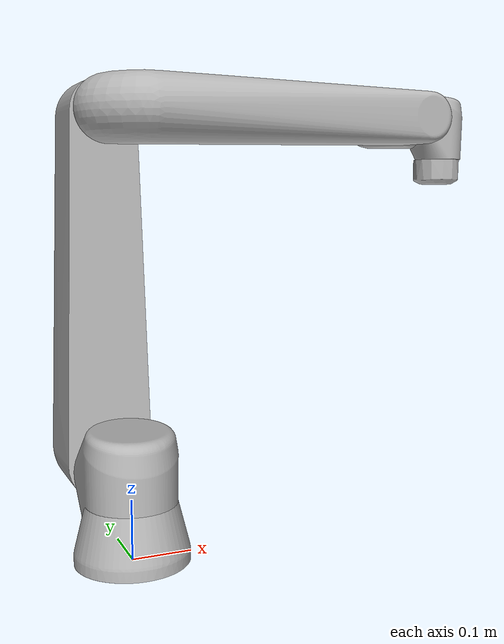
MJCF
<mujoco model="ur10">
  <compiler angle="radian" autolimits="true"/>

  <default>
    <default class="ur10">
      <joint axis="0 1 0" range="-6.28319 6.28319" armature="0.1"/>
      <position ctrlrange="-6.2831 6.2831"/>
      <general biastype="affine" ctrlrange="-6.2831 6.2831" gainprm="5000" biasprm="0 -5000 -500"/>
    </default>
  </default>

  <asset>
    <mesh name="base0" file="assets/base.stl"/>
    <mesh name="shoulder" file="assets/shoulder.stl"/>
    <mesh name="upperarm" file="assets/upperarm.stl"/>
    <mesh name="forearm" file="assets/forearm.stl"/>
    <mesh name="wrist1" file="assets/wrist1.stl"/>
    <mesh name="wrist2" file="assets/wrist2.stl"/>
    <mesh name="wrist3" file="assets/wrist3.stl"/>
  </asset>

  <worldbody>
    <body name="base0" childclass="ur10">
      <geom quat="-1 0 0 0" type="mesh" rgba="0.7 0.7 0.7 1" mesh="base0"/>
      <body name="shoulder_link" pos="0 0 0.1273" quat="0 0 0 1">
        <inertial pos="0.021 -0.027 0" quat="0.988634 -0.000680926 0.148578 -0.0229591" mass="7.1" diaginertia="0.0353866 0.0352903 0.0202532"/>
        <joint name="joint1" pos="0 0 0" axis="0 0 1" range="-6.28319 6.28319" damping="10"/>
        <geom quat="0 0 0 1" type="mesh" rgba="0.7 0.7 0.7 1" mesh="shoulder"/>
        <body name="upper_arm_link" quat="0.5 0.5 0.5 -0.5">
          <inertial pos="-0.232 0 0.158" quat="0.500033 0.499784 0.489585 0.510381" mass="12.7" diaginertia="0.77068 0.769758 0.0278114"/>
          <joint name="joint2" pos="0 0 0" axis="0 0 1" range="-6.28319 6.28319" damping="10"/>
          <geom pos="0 0 0.220941" quat="0.5 0.5 -0.5 -0.5" type="mesh" rgba="0.7 0.7 0.7 1" mesh="upperarm"/>
          <body name="forearm_link" pos="-0.612 0 0" quat="1 0 0 1">
            <inertial pos="-0.3323 0 0.068" quat="0.492051 0.507971 0.507346 0.492394" mass="4.27" diaginertia="0.30928 0.306743 0.00985709"/>
            <joint name="joint3" pos="0 0 0" axis="0 0 1" range="-3.14159 3.14159" damping="5"/>
            <geom pos="0 0 0.049042" quat="0.5 0.5 -0.5 -0.5" type="mesh" rgba="0.7 0.7 0.7 1" mesh="forearm"/>
            <body name="wrist_1_link" pos="-0.5723 0 0.163941" quat="1 0 0 -1">
              <inertial pos="0 -0.018 0.007" quat="0.525776 0.850564 -0.0100431 9.45801e-05" mass="2" diaginertia="0.00296017 0.00269992 0.00209991"/>
              <joint name="joint4" pos="0 0 0" axis="0 0 1" range="-6.28319 6.28319" damping="2"/>
              <geom pos="0 0 -0.1149" quat="0.707107 0.707107 0 0" type="mesh" rgba="0.7 0.7 0.7 1" mesh="wrist1"/>
              <body name="wrist_2_link" pos="0 -0.1157 -2.37305e-11" quat="0.5 0.5 0.5 -0.5">
                <inertial pos="0 0.018 -0.007" quat="0.525776 0.850564 -0.0100431 9.45801e-05" mass="2" diaginertia="0.00296017 0.00269992 0.00209991"/>
                <joint name="joint5" pos="0 0 0" axis="0 0 1" range="-6.28319 6.28319" damping="2"/>
                <geom pos="0 0 -0.1158" quat="1 0 0 0" type="mesh" rgba="0.7 0.7 0.7 1" mesh="wrist2"/>
                <body name="wrist_3_link" pos="0 0.0922 -1.89105e-11" quat="0.707107 -0.707107 0 0">
                  <inertial pos="0 0 -0.026" quat="0.707107 0 0 0.707107" mass="0.365" diaginertia="0.00041 0.0004 0.00034"/>
                  <joint name="joint6" pos="0 0 0" axis="0 0 1" range="-6.28319 6.28319" damping="2"/>
                  <geom pos="0 0 -0.0922" quat="0.707107 0.707107 0 0" type="mesh" rgba="0.7 0.7 0.7 1" mesh="wrist3"/>
                  <body name="attachment" pos="0 0 0" quat="0.707107 0 0 0.707107"></body>
                </body>
              </body>
            </body>
          </body>
        </body>
      </body>
    </body>
  </worldbody>

  <actuator>
    <general class="ur10" name="actuator1" joint="joint1" gainprm="4500" biasprm="0 -4500 -450" forcerange="-330 330"/>
    <general class="ur10" name="actuator2" joint="joint2" gainprm="4500" biasprm="0 -4500 -450" forcerange="-330 330"/>
    <general class="ur10" name="actuator3" joint="joint3" gainprm="3500" biasprm="0 -3500 -350" forcerange="-150 150" ctrlrange="-3.1415 3.1415"/>
    <general class="ur10" name="actuator4" joint="joint4" gainprm="3500" biasprm="0 -3500 -350" forcerange="-56 56"/>
    <general class="ur10" name="actuator5" joint="joint5" gainprm="2000" biasprm="0 -2000 -200" forcerange="-56 56"/>
    <general class="ur10" name="actuator6" joint="joint6" gainprm="2000" biasprm="0 -2000 -200" forcerange="-56 56"/>
  </actuator>

  <sensor>
    <jointpos name="ur10/joint1_pos" joint="joint1"/>
    <jointpos name="ur10/joint2_pos" joint="joint2"/>
    <jointpos name="ur10/joint3_pos" joint="joint3"/>
    <jointpos name="ur10/joint4_pos" joint="joint4"/>
    <jointpos name="ur10/joint5_pos" joint="joint5"/>
    <jointpos name="ur10/joint6_pos" joint="joint6"/>
  </sensor>

</mujoco>
